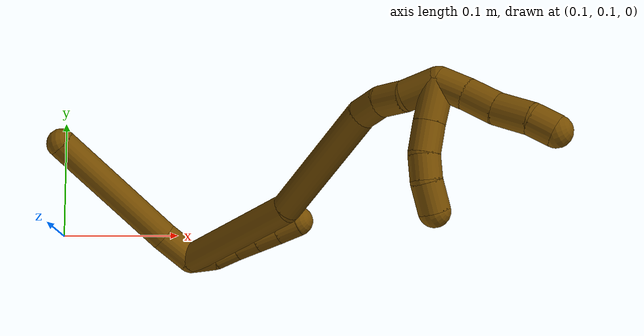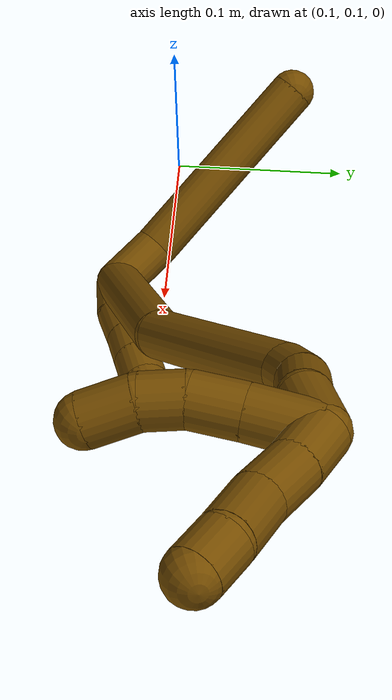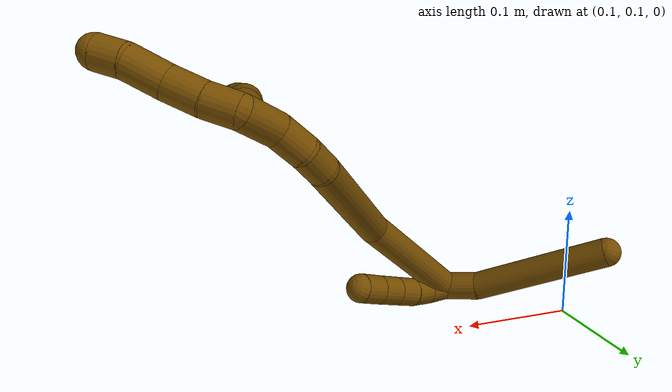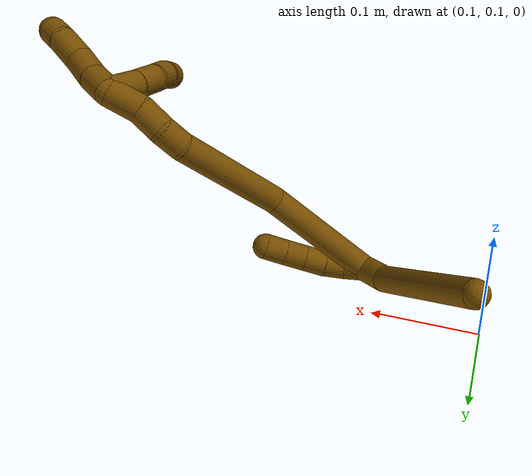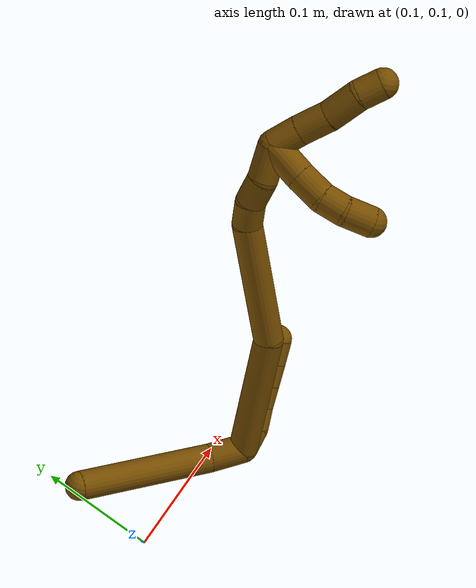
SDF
<sdf version="1.7">
 <world name="default">
  <model name="12">
   <static>0</static>
   <link name="12">
    <collision name="collision-cylinder-e_1_2_8">
     <pose>-0.011612 -0.007007 -0.006898 2.34835 -0.868173 -1.67216</pose>
     <geometry><cylinder><radius>0.0125</radius><length>0.030433</length></cylinder></geometry>
     <surface>
      <friction><ode><mu>1.16</mu><mu2>1.16</mu2><slip1>0</slip1><slip2>0</slip2></ode></friction>
      <contact><ode><kp>1e+06</kp><kd>1</kd><max_vel>0</max_vel><min_depth>0.001</min_depth></ode></contact>
     </surface>
    </collision>
    <visual name="visual-cylinder-e_1_2_8">
     <pose>-0.011612 -0.007007 -0.006898 2.34835 -0.868173 -1.67216</pose>
     <geometry><cylinder><radius>0.0125</radius><length>0.030433</length></cylinder></geometry>
     <material><ambient>0.466667 0.301961 0 1</ambient></material>
    </visual>
    <collision name="collision-cylinder-e_2_8_6">
     <pose>-0.066075 -0.053123 -0.028238 1.92453 -0.79913 -1.08977</pose>
     <geometry><cylinder><radius>0.0125</radius><length>0.119567</length></cylinder></geometry>
     <surface>
      <friction><ode><mu>1.16</mu><mu2>1.16</mu2><slip1>0</slip1><slip2>0</slip2></ode></friction>
      <contact><ode><kp>1e+06</kp><kd>1</kd><max_vel>0</max_vel><min_depth>0.001</min_depth></ode></contact>
     </surface>
    </collision>
    <visual name="visual-cylinder-e_2_8_6">
     <pose>-0.066075 -0.053123 -0.028238 1.92453 -0.79913 -1.08977</pose>
     <geometry><cylinder><radius>0.0125</radius><length>0.119567</length></cylinder></geometry>
     <material><ambient>0.466667 0.301961 0 1</ambient></material>
    </visual>
    <collision name="collision-cylinder-e_1_2_9">
     <pose>0.000877 0.005483 0.008317 -0.582853 0.087863 -0.026371</pose>
     <geometry><cylinder><radius>0.0125</radius><length>0.02</length></cylinder></geometry>
     <surface>
      <friction><ode><mu>1.16</mu><mu2>1.16</mu2><slip1>0</slip1><slip2>0</slip2></ode></friction>
      <contact><ode><kp>1e+06</kp><kd>1</kd><max_vel>0</max_vel><min_depth>0.001</min_depth></ode></contact>
     </surface>
    </collision>
    <visual name="visual-cylinder-e_1_2_9">
     <pose>0.000877 0.005483 0.008317 -0.582853 0.087863 -0.026371</pose>
     <geometry><cylinder><radius>0.0125</radius><length>0.02</length></cylinder></geometry>
     <material><ambient>0.466667 0.301961 0 1</ambient></material>
    </visual>
    <collision name="collision-cylinder-e_2_9_10">
     <pose>0.000144 0.014325 0.025914 -0.347276 -0.161823 0.028445</pose>
     <geometry><cylinder><radius>0.0125</radius><length>0.02</length></cylinder></geometry>
     <surface>
      <friction><ode><mu>1.16</mu><mu2>1.16</mu2><slip1>0</slip1><slip2>0</slip2></ode></friction>
      <contact><ode><kp>1e+06</kp><kd>1</kd><max_vel>0</max_vel><min_depth>0.001</min_depth></ode></contact>
     </surface>
    </collision>
    <visual name="visual-cylinder-e_2_9_10">
     <pose>0.000144 0.014325 0.025914 -0.347276 -0.161823 0.028445</pose>
     <geometry><cylinder><radius>0.0125</radius><length>0.02</length></cylinder></geometry>
     <material><ambient>0.466667 0.301961 0 1</ambient></material>
    </visual>
    <collision name="collision-cylinder-e_3_10_11">
     <pose>-0.00233 0.019886 0.04491 -0.222922 -0.086354 0.009671</pose>
     <geometry><cylinder><radius>0.0125</radius><length>0.02</length></cylinder></geometry>
     <surface>
      <friction><ode><mu>1.16</mu><mu2>1.16</mu2><slip1>0</slip1><slip2>0</slip2></ode></friction>
      <contact><ode><kp>1e+06</kp><kd>1</kd><max_vel>0</max_vel><min_depth>0.001</min_depth></ode></contact>
     </surface>
    </collision>
    <visual name="visual-cylinder-e_3_10_11">
     <pose>-0.00233 0.019886 0.04491 -0.222922 -0.086354 0.009671</pose>
     <geometry><cylinder><radius>0.0125</radius><length>0.02</length></cylinder></geometry>
     <material><ambient>0.466667 0.301961 0 1</ambient></material>
    </visual>
    <collision name="collision-cylinder-e_4_11_12">
     <pose>-0.004072 0.024269 0.064346 -0.220629 -0.088037 0.009758</pose>
     <geometry><cylinder><radius>0.0125</radius><length>0.02</length></cylinder></geometry>
     <surface>
      <friction><ode><mu>1.16</mu><mu2>1.16</mu2><slip1>0</slip1><slip2>0</slip2></ode></friction>
      <contact><ode><kp>1e+06</kp><kd>1</kd><max_vel>0</max_vel><min_depth>0.001</min_depth></ode></contact>
     </surface>
    </collision>
    <visual name="visual-cylinder-e_4_11_12">
     <pose>-0.004072 0.024269 0.064346 -0.220629 -0.088037 0.009758</pose>
     <geometry><cylinder><radius>0.0125</radius><length>0.02</length></cylinder></geometry>
     <material><ambient>0.466667 0.301961 0 1</ambient></material>
    </visual>
    <collision name="collision-cylinder-e_5_12_5">
     <pose>-0.005956 0.028424 0.083817 -0.199857 -0.100679 0.010103</pose>
     <geometry><cylinder><radius>0.0125</radius><length>0.02</length></cylinder></geometry>
     <surface>
      <friction><ode><mu>1.16</mu><mu2>1.16</mu2><slip1>0</slip1><slip2>0</slip2></ode></friction>
      <contact><ode><kp>1e+06</kp><kd>1</kd><max_vel>0</max_vel><min_depth>0.001</min_depth></ode></contact>
     </surface>
    </collision>
    <visual name="visual-cylinder-e_5_12_5">
     <pose>-0.005956 0.028424 0.083817 -0.199857 -0.100679 0.010103</pose>
     <geometry><cylinder><radius>0.0125</radius><length>0.02</length></cylinder></geometry>
     <material><ambient>0.466667 0.301961 0 1</ambient></material>
    </visual>
    <collision name="collision-cylinder-e_1_2_13">
     <pose>-0.004346 -0.009974 0.056432 0.174931 -0.0757 -0.006641</pose>
     <geometry><cylinder><radius>0.0125</radius><length>0.114941</length></cylinder></geometry>
     <surface>
      <friction><ode><mu>1.16</mu><mu2>1.16</mu2><slip1>0</slip1><slip2>0</slip2></ode></friction>
      <contact><ode><kp>1e+06</kp><kd>1</kd><max_vel>0</max_vel><min_depth>0.001</min_depth></ode></contact>
     </surface>
    </collision>
    <visual name="visual-cylinder-e_1_2_13">
     <pose>-0.004346 -0.009974 0.056432 0.174931 -0.0757 -0.006641</pose>
     <geometry><cylinder><radius>0.0125</radius><length>0.114941</length></cylinder></geometry>
     <material><ambient>0.466667 0.301961 0 1</ambient></material>
    </visual>
    <collision name="collision-cylinder-e_2_13_14">
     <pose>-0.03105 -0.032067 0.161763 0.242961 -0.417659 -0.051731</pose>
     <geometry><cylinder><radius>0.0125</radius><length>0.110235</length></cylinder></geometry>
     <surface>
      <friction><ode><mu>1.16</mu><mu2>1.16</mu2><slip1>0</slip1><slip2>0</slip2></ode></friction>
      <contact><ode><kp>1e+06</kp><kd>1</kd><max_vel>0</max_vel><min_depth>0.001</min_depth></ode></contact>
     </surface>
    </collision>
    <visual name="visual-cylinder-e_2_13_14">
     <pose>-0.03105 -0.032067 0.161763 0.242961 -0.417659 -0.051731</pose>
     <geometry><cylinder><radius>0.0125</radius><length>0.110235</length></cylinder></geometry>
     <material><ambient>0.466667 0.301961 0 1</ambient></material>
    </visual>
    <collision name="collision-cylinder-e_3_14_15">
     <pose>-0.054706 -0.046837 0.221219 0.245878 -0.118859 -0.014704</pose>
     <geometry><cylinder><radius>0.0125</radius><length>0.02192</length></cylinder></geometry>
     <surface>
      <friction><ode><mu>1.16</mu><mu2>1.16</mu2><slip1>0</slip1><slip2>0</slip2></ode></friction>
      <contact><ode><kp>1e+06</kp><kd>1</kd><max_vel>0</max_vel><min_depth>0.001</min_depth></ode></contact>
     </surface>
    </collision>
    <visual name="visual-cylinder-e_3_14_15">
     <pose>-0.054706 -0.046837 0.221219 0.245878 -0.118859 -0.014704</pose>
     <geometry><cylinder><radius>0.0125</radius><length>0.02192</length></cylinder></geometry>
     <material><ambient>0.466667 0.301961 0 1</ambient></material>
    </visual>
    <collision name="collision-cylinder-e_4_15_16">
     <pose>-0.053992 -0.05172 0.243307 0.191356 0.169779 0.016333</pose>
     <geometry><cylinder><radius>0.0125</radius><length>0.023836</length></cylinder></geometry>
     <surface>
      <friction><ode><mu>1.16</mu><mu2>1.16</mu2><slip1>0</slip1><slip2>0</slip2></ode></friction>
      <contact><ode><kp>1e+06</kp><kd>1</kd><max_vel>0</max_vel><min_depth>0.001</min_depth></ode></contact>
     </surface>
    </collision>
    <visual name="visual-cylinder-e_4_15_16">
     <pose>-0.053992 -0.05172 0.243307 0.191356 0.169779 0.016333</pose>
     <geometry><cylinder><radius>0.0125</radius><length>0.023836</length></cylinder></geometry>
     <material><ambient>0.466667 0.301961 0 1</ambient></material>
    </visual>
    <collision name="collision-cylinder-e_5_16_1">
     <pose>-0.052413 -0.053668 0.269363 -0.019663 -0.029892 0.000294</pose>
     <geometry><cylinder><radius>0.0125</radius><length>0.029067</length></cylinder></geometry>
     <surface>
      <friction><ode><mu>1.16</mu><mu2>1.16</mu2><slip1>0</slip1><slip2>0</slip2></ode></friction>
      <contact><ode><kp>1e+06</kp><kd>1</kd><max_vel>0</max_vel><min_depth>0.001</min_depth></ode></contact>
     </surface>
    </collision>
    <visual name="visual-cylinder-e_5_16_1">
     <pose>-0.052413 -0.053668 0.269363 -0.019663 -0.029892 0.000294</pose>
     <geometry><cylinder><radius>0.0125</radius><length>0.029067</length></cylinder></geometry>
     <material><ambient>0.466667 0.301961 0 1</ambient></material>
    </visual>
    <collision name="collision-cylinder-e_1_1_17">
     <pose>-0.045105 -0.051499 0.293037 -0.202981 0.692055 -0.073401</pose>
     <geometry><cylinder><radius>0.0125</radius><length>0.024267</length></cylinder></geometry>
     <surface>
      <friction><ode><mu>1.16</mu><mu2>1.16</mu2><slip1>0</slip1><slip2>0</slip2></ode></friction>
      <contact><ode><kp>1e+06</kp><kd>1</kd><max_vel>0</max_vel><min_depth>0.001</min_depth></ode></contact>
     </surface>
    </collision>
    <visual name="visual-cylinder-e_1_1_17">
     <pose>-0.045105 -0.051499 0.293037 -0.202981 0.692055 -0.073401</pose>
     <geometry><cylinder><radius>0.0125</radius><length>0.024267</length></cylinder></geometry>
     <material><ambient>0.466667 0.301961 0 1</ambient></material>
    </visual>
    <collision name="collision-cylinder-e_2_17_18">
     <pose>-0.028312 -0.048922 0.311825 -0.071886 0.752697 -0.028418</pose>
     <geometry><cylinder><radius>0.0125</radius><length>0.026476</length></cylinder></geometry>
     <surface>
      <friction><ode><mu>1.16</mu><mu2>1.16</mu2><slip1>0</slip1><slip2>0</slip2></ode></friction>
      <contact><ode><kp>1e+06</kp><kd>1</kd><max_vel>0</max_vel><min_depth>0.001</min_depth></ode></contact>
     </surface>
    </collision>
    <visual name="visual-cylinder-e_2_17_18">
     <pose>-0.028312 -0.048922 0.311825 -0.071886 0.752697 -0.028418</pose>
     <geometry><cylinder><radius>0.0125</radius><length>0.026476</length></cylinder></geometry>
     <material><ambient>0.466667 0.301961 0 1</ambient></material>
    </visual>
    <collision name="collision-cylinder-e_3_18_19">
     <pose>-0.011125 -0.048265 0.33352 0.003039 0.593611 0.000929</pose>
     <geometry><cylinder><radius>0.0125</radius><length>0.029094</length></cylinder></geometry>
     <surface>
      <friction><ode><mu>1.16</mu><mu2>1.16</mu2><slip1>0</slip1><slip2>0</slip2></ode></friction>
      <contact><ode><kp>1e+06</kp><kd>1</kd><max_vel>0</max_vel><min_depth>0.001</min_depth></ode></contact>
     </surface>
    </collision>
    <visual name="visual-cylinder-e_3_18_19">
     <pose>-0.011125 -0.048265 0.33352 0.003039 0.593611 0.000929</pose>
     <geometry><cylinder><radius>0.0125</radius><length>0.029094</length></cylinder></geometry>
     <material><ambient>0.466667 0.301961 0 1</ambient></material>
    </visual>
    <collision name="collision-cylinder-e_4_19_4">
     <pose>0.003952 -0.046432 0.352647 -0.258476 0.75941 -0.103636</pose>
     <geometry><cylinder><radius>0.0125</radius><length>0.020163</length></cylinder></geometry>
     <surface>
      <friction><ode><mu>1.16</mu><mu2>1.16</mu2><slip1>0</slip1><slip2>0</slip2></ode></friction>
      <contact><ode><kp>1e+06</kp><kd>1</kd><max_vel>0</max_vel><min_depth>0.001</min_depth></ode></contact>
     </surface>
    </collision>
    <visual name="visual-cylinder-e_4_19_4">
     <pose>0.003952 -0.046432 0.352647 -0.258476 0.75941 -0.103636</pose>
     <geometry><cylinder><radius>0.0125</radius><length>0.020163</length></cylinder></geometry>
     <material><ambient>0.466667 0.301961 0 1</ambient></material>
    </visual>
    <collision name="collision-cylinder-e_1_1_20">
     <pose>-0.038628 -0.055702 0.277024 2.81565 1.09955 2.61729</pose>
     <geometry><cylinder><radius>0.0125</radius><length>0.031917</length></cylinder></geometry>
     <surface>
      <friction><ode><mu>1.16</mu><mu2>1.16</mu2><slip1>0</slip1><slip2>0</slip2></ode></friction>
      <contact><ode><kp>1e+06</kp><kd>1</kd><max_vel>0</max_vel><min_depth>0.001</min_depth></ode></contact>
     </surface>
    </collision>
    <visual name="visual-cylinder-e_1_1_20">
     <pose>-0.038628 -0.055702 0.277024 2.81565 1.09955 2.61729</pose>
     <geometry><cylinder><radius>0.0125</radius><length>0.031917</length></cylinder></geometry>
     <material><ambient>0.466667 0.301961 0 1</ambient></material>
    </visual>
    <collision name="collision-cylinder-e_2_20_21">
     <pose>-0.013311 -0.059819 0.265796 2.75108 1.16869 2.56046</pose>
     <geometry><cylinder><radius>0.0125</radius><length>0.024119</length></cylinder></geometry>
     <surface>
      <friction><ode><mu>1.16</mu><mu2>1.16</mu2><slip1>0</slip1><slip2>0</slip2></ode></friction>
      <contact><ode><kp>1e+06</kp><kd>1</kd><max_vel>0</max_vel><min_depth>0.001</min_depth></ode></contact>
     </surface>
    </collision>
    <visual name="visual-cylinder-e_2_20_21">
     <pose>-0.013311 -0.059819 0.265796 2.75108 1.16869 2.56046</pose>
     <geometry><cylinder><radius>0.0125</radius><length>0.024119</length></cylinder></geometry>
     <material><ambient>0.466667 0.301961 0 1</ambient></material>
    </visual>
    <collision name="collision-cylinder-e_3_21_22">
     <pose>0.007577 -0.061042 0.259453 -2.85928 1.36342 -2.79488</pose>
     <geometry><cylinder><radius>0.0125</radius><length>0.020011</length></cylinder></geometry>
     <surface>
      <friction><ode><mu>1.16</mu><mu2>1.16</mu2><slip1>0</slip1><slip2>0</slip2></ode></friction>
      <contact><ode><kp>1e+06</kp><kd>1</kd><max_vel>0</max_vel><min_depth>0.001</min_depth></ode></contact>
     </surface>
    </collision>
    <visual name="visual-cylinder-e_3_21_22">
     <pose>0.007577 -0.061042 0.259453 -2.85928 1.36342 -2.79488</pose>
     <geometry><cylinder><radius>0.0125</radius><length>0.020011</length></cylinder></geometry>
     <material><ambient>0.466667 0.301961 0 1</ambient></material>
    </visual>
    <collision name="collision-cylinder-e_4_22_3">
     <pose>0.028578 -0.056566 0.255876 -1.95961 1.21101 -1.60198</pose>
     <geometry><cylinder><radius>0.0125</radius><length>0.023953</length></cylinder></geometry>
     <surface>
      <friction><ode><mu>1.16</mu><mu2>1.16</mu2><slip1>0</slip1><slip2>0</slip2></ode></friction>
      <contact><ode><kp>1e+06</kp><kd>1</kd><max_vel>0</max_vel><min_depth>0.001</min_depth></ode></contact>
     </surface>
    </collision>
    <visual name="visual-cylinder-e_4_22_3">
     <pose>0.028578 -0.056566 0.255876 -1.95961 1.21101 -1.60198</pose>
     <geometry><cylinder><radius>0.0125</radius><length>0.023953</length></cylinder></geometry>
     <material><ambient>0.466667 0.301961 0 1</ambient></material>
    </visual>
    <collision name="collision-sphere-3">
     <pose>0.039788 -0.052664 0.254277 0 -0 0</pose>
     <geometry><sphere><radius>0.0125</radius></sphere></geometry>
     <surface>
      <friction><ode><mu>1.16</mu><mu2>1.16</mu2><slip1>0</slip1><slip2>0</slip2></ode></friction>
      <contact><ode><kp>1e+06</kp><kd>1</kd><max_vel>0</max_vel><min_depth>0.001</min_depth></ode></contact>
     </surface>
    </collision>
    <visual name="visual-sphere-3">
     <pose>0.039788 -0.052664 0.254277 0 -0 0</pose>
     <geometry><sphere><radius>0.0125</radius></sphere></geometry>
     <material><ambient>0.466667 0.301961 0 1</ambient></material>
    </visual>
    <collision name="collision-sphere-22">
     <pose>0.017368 -0.060468 0.257474 0 -0 0</pose>
     <geometry><sphere><radius>0.0125</radius></sphere></geometry>
     <surface>
      <friction><ode><mu>1.16</mu><mu2>1.16</mu2><slip1>0</slip1><slip2>0</slip2></ode></friction>
      <contact><ode><kp>1e+06</kp><kd>1</kd><max_vel>0</max_vel><min_depth>0.001</min_depth></ode></contact>
     </surface>
    </collision>
    <visual name="visual-sphere-22">
     <pose>0.017368 -0.060468 0.257474 0 -0 0</pose>
     <geometry><sphere><radius>0.0125</radius></sphere></geometry>
     <material><ambient>0.466667 0.301961 0 1</ambient></material>
    </visual>
    <collision name="collision-sphere-21">
     <pose>-0.002214 -0.061615 0.261431 0 -0 0</pose>
     <geometry><sphere><radius>0.0125</radius></sphere></geometry>
     <surface>
      <friction><ode><mu>1.16</mu><mu2>1.16</mu2><slip1>0</slip1><slip2>0</slip2></ode></friction>
      <contact><ode><kp>1e+06</kp><kd>1</kd><max_vel>0</max_vel><min_depth>0.001</min_depth></ode></contact>
     </surface>
    </collision>
    <visual name="visual-sphere-21">
     <pose>-0.002214 -0.061615 0.261431 0 -0 0</pose>
     <geometry><sphere><radius>0.0125</radius></sphere></geometry>
     <material><ambient>0.466667 0.301961 0 1</ambient></material>
    </visual>
    <collision name="collision-sphere-20">
     <pose>-0.024409 -0.058022 0.27016 0 -0 0</pose>
     <geometry><sphere><radius>0.0125</radius></sphere></geometry>
     <surface>
      <friction><ode><mu>1.16</mu><mu2>1.16</mu2><slip1>0</slip1><slip2>0</slip2></ode></friction>
      <contact><ode><kp>1e+06</kp><kd>1</kd><max_vel>0</max_vel><min_depth>0.001</min_depth></ode></contact>
     </surface>
    </collision>
    <visual name="visual-sphere-20">
     <pose>-0.024409 -0.058022 0.27016 0 -0 0</pose>
     <geometry><sphere><radius>0.0125</radius></sphere></geometry>
     <material><ambient>0.466667 0.301961 0 1</ambient></material>
    </visual>
    <collision name="collision-sphere-4">
     <pose>0.010893 -0.044564 0.359715 0 -0 0</pose>
     <geometry><sphere><radius>0.0125</radius></sphere></geometry>
     <surface>
      <friction><ode><mu>1.16</mu><mu2>1.16</mu2><slip1>0</slip1><slip2>0</slip2></ode></friction>
      <contact><ode><kp>1e+06</kp><kd>1</kd><max_vel>0</max_vel><min_depth>0.001</min_depth></ode></contact>
     </surface>
    </collision>
    <visual name="visual-sphere-4">
     <pose>0.010893 -0.044564 0.359715 0 -0 0</pose>
     <geometry><sphere><radius>0.0125</radius></sphere></geometry>
     <material><ambient>0.466667 0.301961 0 1</ambient></material>
    </visual>
    <collision name="collision-sphere-11">
     <pose>-0.003192 0.022089 0.054626 0 -0 0</pose>
     <geometry><sphere><radius>0.0125</radius></sphere></geometry>
     <surface>
      <friction><ode><mu>1.16</mu><mu2>1.16</mu2><slip1>0</slip1><slip2>0</slip2></ode></friction>
      <contact><ode><kp>1e+06</kp><kd>1</kd><max_vel>0</max_vel><min_depth>0.001</min_depth></ode></contact>
     </surface>
    </collision>
    <visual name="visual-sphere-11">
     <pose>-0.003192 0.022089 0.054626 0 -0 0</pose>
     <geometry><sphere><radius>0.0125</radius></sphere></geometry>
     <material><ambient>0.466667 0.301961 0 1</ambient></material>
    </visual>
    <collision name="collision-sphere-10">
     <pose>-0.001467 0.017684 0.035194 0 -0 0</pose>
     <geometry><sphere><radius>0.0125</radius></sphere></geometry>
     <surface>
      <friction><ode><mu>1.16</mu><mu2>1.16</mu2><slip1>0</slip1><slip2>0</slip2></ode></friction>
      <contact><ode><kp>1e+06</kp><kd>1</kd><max_vel>0</max_vel><min_depth>0.001</min_depth></ode></contact>
     </surface>
    </collision>
    <visual name="visual-sphere-10">
     <pose>-0.001467 0.017684 0.035194 0 -0 0</pose>
     <geometry><sphere><radius>0.0125</radius></sphere></geometry>
     <material><ambient>0.466667 0.301961 0 1</ambient></material>
    </visual>
    <collision name="collision-sphere-6">
     <pose>-0.108925 -0.09223 -0.042679 0 -0 0</pose>
     <geometry><sphere><radius>0.0125</radius></sphere></geometry>
     <surface>
      <friction><ode><mu>1.16</mu><mu2>1.16</mu2><slip1>0</slip1><slip2>0</slip2></ode></friction>
      <contact><ode><kp>1e+06</kp><kd>1</kd><max_vel>0</max_vel><min_depth>0.001</min_depth></ode></contact>
     </surface>
    </collision>
    <visual name="visual-sphere-6">
     <pose>-0.108925 -0.09223 -0.042679 0 -0 0</pose>
     <geometry><sphere><radius>0.0125</radius></sphere></geometry>
     <material><ambient>0.466667 0.301961 0 1</ambient></material>
    </visual>
    <collision name="collision-sphere-9">
     <pose>0.001755 0.010966 0.016634 0 -0 0</pose>
     <geometry><sphere><radius>0.0125</radius></sphere></geometry>
     <surface>
      <friction><ode><mu>1.16</mu><mu2>1.16</mu2><slip1>0</slip1><slip2>0</slip2></ode></friction>
      <contact><ode><kp>1e+06</kp><kd>1</kd><max_vel>0</max_vel><min_depth>0.001</min_depth></ode></contact>
     </surface>
    </collision>
    <visual name="visual-sphere-9">
     <pose>0.001755 0.010966 0.016634 0 -0 0</pose>
     <geometry><sphere><radius>0.0125</radius></sphere></geometry>
     <material><ambient>0.466667 0.301961 0 1</ambient></material>
    </visual>
    <collision name="collision-sphere-2">
     <geometry><sphere><radius>0.0125</radius></sphere></geometry>
     <surface>
      <friction><ode><mu>1.16</mu><mu2>1.16</mu2><slip1>0</slip1><slip2>0</slip2></ode></friction>
      <contact><ode><kp>1e+06</kp><kd>1</kd><max_vel>0</max_vel><min_depth>0.001</min_depth></ode></contact>
     </surface>
    </collision>
    <visual name="visual-sphere-2">
     <geometry><sphere><radius>0.0125</radius></sphere></geometry>
     <material><ambient>0.466667 0.301961 0 1</ambient></material>
    </visual>
    <collision name="collision-sphere-19">
     <pose>-0.002988 -0.048301 0.345578 0 -0 0</pose>
     <geometry><sphere><radius>0.0125</radius></sphere></geometry>
     <surface>
      <friction><ode><mu>1.16</mu><mu2>1.16</mu2><slip1>0</slip1><slip2>0</slip2></ode></friction>
      <contact><ode><kp>1e+06</kp><kd>1</kd><max_vel>0</max_vel><min_depth>0.001</min_depth></ode></contact>
     </surface>
    </collision>
    <visual name="visual-sphere-19">
     <pose>-0.002988 -0.048301 0.345578 0 -0 0</pose>
     <geometry><sphere><radius>0.0125</radius></sphere></geometry>
     <material><ambient>0.466667 0.301961 0 1</ambient></material>
    </visual>
    <collision name="collision-sphere-8">
     <pose>-0.023225 -0.014015 -0.013797 0 -0 0</pose>
     <geometry><sphere><radius>0.0125</radius></sphere></geometry>
     <surface>
      <friction><ode><mu>1.16</mu><mu2>1.16</mu2><slip1>0</slip1><slip2>0</slip2></ode></friction>
      <contact><ode><kp>1e+06</kp><kd>1</kd><max_vel>0</max_vel><min_depth>0.001</min_depth></ode></contact>
     </surface>
    </collision>
    <visual name="visual-sphere-8">
     <pose>-0.023225 -0.014015 -0.013797 0 -0 0</pose>
     <geometry><sphere><radius>0.0125</radius></sphere></geometry>
     <material><ambient>0.466667 0.301961 0 1</ambient></material>
    </visual>
    <collision name="collision-sphere-12">
     <pose>-0.004951 0.026449 0.074066 0 -0 0</pose>
     <geometry><sphere><radius>0.0125</radius></sphere></geometry>
     <surface>
      <friction><ode><mu>1.16</mu><mu2>1.16</mu2><slip1>0</slip1><slip2>0</slip2></ode></friction>
      <contact><ode><kp>1e+06</kp><kd>1</kd><max_vel>0</max_vel><min_depth>0.001</min_depth></ode></contact>
     </surface>
    </collision>
    <visual name="visual-sphere-12">
     <pose>-0.004951 0.026449 0.074066 0 -0 0</pose>
     <geometry><sphere><radius>0.0125</radius></sphere></geometry>
     <material><ambient>0.466667 0.301961 0 1</ambient></material>
    </visual>
    <collision name="collision-sphere-5">
     <pose>-0.006961 0.030399 0.093569 0 -0 0</pose>
     <geometry><sphere><radius>0.0125</radius></sphere></geometry>
     <surface>
      <friction><ode><mu>1.16</mu><mu2>1.16</mu2><slip1>0</slip1><slip2>0</slip2></ode></friction>
      <contact><ode><kp>1e+06</kp><kd>1</kd><max_vel>0</max_vel><min_depth>0.001</min_depth></ode></contact>
     </surface>
    </collision>
    <visual name="visual-sphere-5">
     <pose>-0.006961 0.030399 0.093569 0 -0 0</pose>
     <geometry><sphere><radius>0.0125</radius></sphere></geometry>
     <material><ambient>0.466667 0.301961 0 1</ambient></material>
    </visual>
    <collision name="collision-sphere-13">
     <pose>-0.008693 -0.019947 0.112863 0 -0 0</pose>
     <geometry><sphere><radius>0.0125</radius></sphere></geometry>
     <surface>
      <friction><ode><mu>1.16</mu><mu2>1.16</mu2><slip1>0</slip1><slip2>0</slip2></ode></friction>
      <contact><ode><kp>1e+06</kp><kd>1</kd><max_vel>0</max_vel><min_depth>0.001</min_depth></ode></contact>
     </surface>
    </collision>
    <visual name="visual-sphere-13">
     <pose>-0.008693 -0.019947 0.112863 0 -0 0</pose>
     <geometry><sphere><radius>0.0125</radius></sphere></geometry>
     <material><ambient>0.466667 0.301961 0 1</ambient></material>
    </visual>
    <collision name="collision-sphere-14">
     <pose>-0.053407 -0.044188 0.210663 0 -0 0</pose>
     <geometry><sphere><radius>0.0125</radius></sphere></geometry>
     <surface>
      <friction><ode><mu>1.16</mu><mu2>1.16</mu2><slip1>0</slip1><slip2>0</slip2></ode></friction>
      <contact><ode><kp>1e+06</kp><kd>1</kd><max_vel>0</max_vel><min_depth>0.001</min_depth></ode></contact>
     </surface>
    </collision>
    <visual name="visual-sphere-14">
     <pose>-0.053407 -0.044188 0.210663 0 -0 0</pose>
     <geometry><sphere><radius>0.0125</radius></sphere></geometry>
     <material><ambient>0.466667 0.301961 0 1</ambient></material>
    </visual>
    <collision name="collision-sphere-15">
     <pose>-0.056006 -0.049486 0.231774 0 -0 0</pose>
     <geometry><sphere><radius>0.0125</radius></sphere></geometry>
     <surface>
      <friction><ode><mu>1.16</mu><mu2>1.16</mu2><slip1>0</slip1><slip2>0</slip2></ode></friction>
      <contact><ode><kp>1e+06</kp><kd>1</kd><max_vel>0</max_vel><min_depth>0.001</min_depth></ode></contact>
     </surface>
    </collision>
    <visual name="visual-sphere-15">
     <pose>-0.056006 -0.049486 0.231774 0 -0 0</pose>
     <geometry><sphere><radius>0.0125</radius></sphere></geometry>
     <material><ambient>0.466667 0.301961 0 1</ambient></material>
    </visual>
    <collision name="collision-sphere-16">
     <pose>-0.051978 -0.053954 0.254839 0 -0 0</pose>
     <geometry><sphere><radius>0.0125</radius></sphere></geometry>
     <surface>
      <friction><ode><mu>1.16</mu><mu2>1.16</mu2><slip1>0</slip1><slip2>0</slip2></ode></friction>
      <contact><ode><kp>1e+06</kp><kd>1</kd><max_vel>0</max_vel><min_depth>0.001</min_depth></ode></contact>
     </surface>
    </collision>
    <visual name="visual-sphere-16">
     <pose>-0.051978 -0.053954 0.254839 0 -0 0</pose>
     <geometry><sphere><radius>0.0125</radius></sphere></geometry>
     <material><ambient>0.466667 0.301961 0 1</ambient></material>
    </visual>
    <collision name="collision-sphere-1">
     <pose>-0.052847 -0.053382 0.283887 0 -0 0</pose>
     <geometry><sphere><radius>0.0125</radius></sphere></geometry>
     <surface>
      <friction><ode><mu>1.16</mu><mu2>1.16</mu2><slip1>0</slip1><slip2>0</slip2></ode></friction>
      <contact><ode><kp>1e+06</kp><kd>1</kd><max_vel>0</max_vel><min_depth>0.001</min_depth></ode></contact>
     </surface>
    </collision>
    <visual name="visual-sphere-1">
     <pose>-0.052847 -0.053382 0.283887 0 -0 0</pose>
     <geometry><sphere><radius>0.0125</radius></sphere></geometry>
     <material><ambient>0.466667 0.301961 0 1</ambient></material>
    </visual>
    <collision name="collision-sphere-18">
     <pose>-0.019262 -0.048228 0.321461 0 -0 0</pose>
     <geometry><sphere><radius>0.0125</radius></sphere></geometry>
     <surface>
      <friction><ode><mu>1.16</mu><mu2>1.16</mu2><slip1>0</slip1><slip2>0</slip2></ode></friction>
      <contact><ode><kp>1e+06</kp><kd>1</kd><max_vel>0</max_vel><min_depth>0.001</min_depth></ode></contact>
     </surface>
    </collision>
    <visual name="visual-sphere-18">
     <pose>-0.019262 -0.048228 0.321461 0 -0 0</pose>
     <geometry><sphere><radius>0.0125</radius></sphere></geometry>
     <material><ambient>0.466667 0.301961 0 1</ambient></material>
    </visual>
    <collision name="collision-sphere-17">
     <pose>-0.037362 -0.049616 0.302188 0 -0 0</pose>
     <geometry><sphere><radius>0.0125</radius></sphere></geometry>
     <surface>
      <friction><ode><mu>1.16</mu><mu2>1.16</mu2><slip1>0</slip1><slip2>0</slip2></ode></friction>
      <contact><ode><kp>1e+06</kp><kd>1</kd><max_vel>0</max_vel><min_depth>0.001</min_depth></ode></contact>
     </surface>
    </collision>
    <visual name="visual-sphere-17">
     <pose>-0.037362 -0.049616 0.302188 0 -0 0</pose>
     <geometry><sphere><radius>0.0125</radius></sphere></geometry>
     <material><ambient>0.466667 0.301961 0 1</ambient></material>
    </visual>
    <inertial>
     <pose>-0.025624 -0.031867 0.136681 0 -0 0</pose>
     <mass>0.75</mass>
     <inertia>
      <ixx>0.000202</ixx>
      <ixy>0</ixy>
      <ixz>0</ixz>
      <iyy>0.000233</iyy>
      <iyz>0</iyz>
      <izz>0.000325</izz>
     </inertia>
    </inertial>
   </link>
   <pose>0.214457 0.076606 0.033935 -1.03546 -0.079547 -1.34883</pose>
  </model>
 </world>
</sdf>
